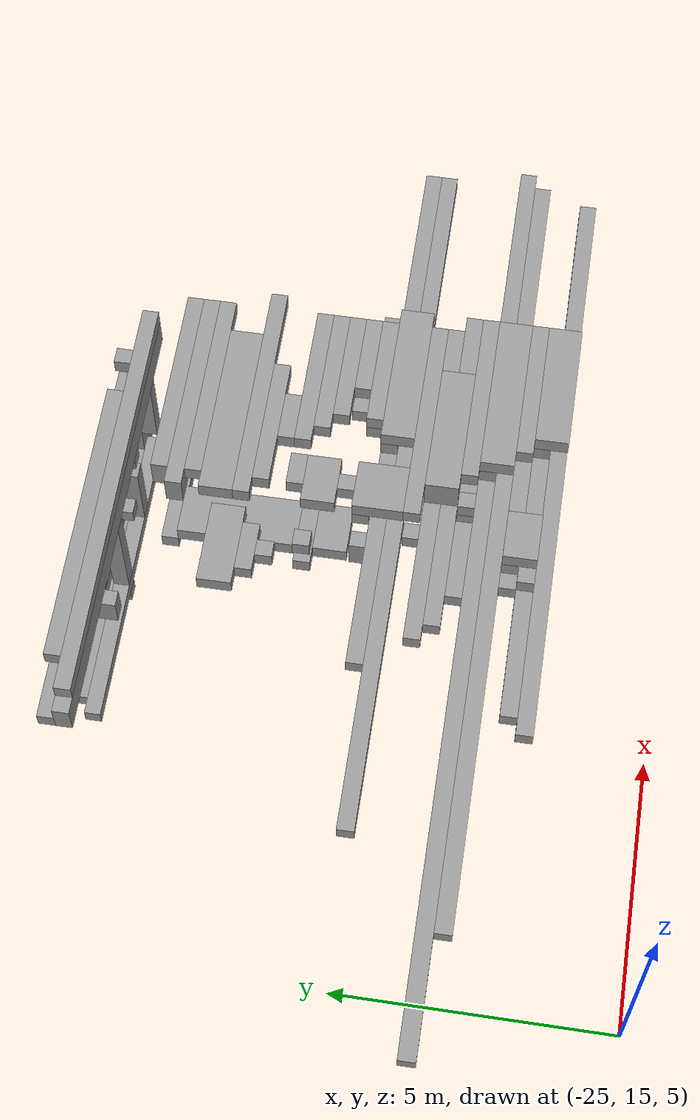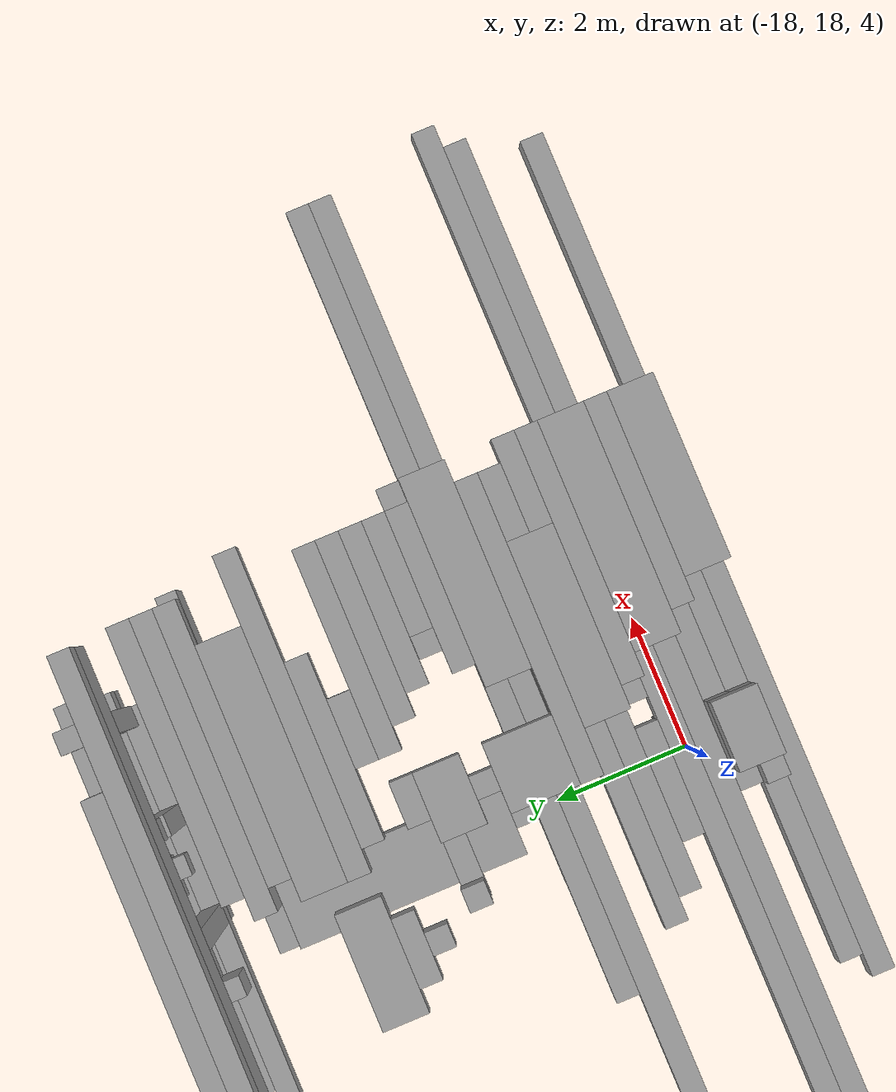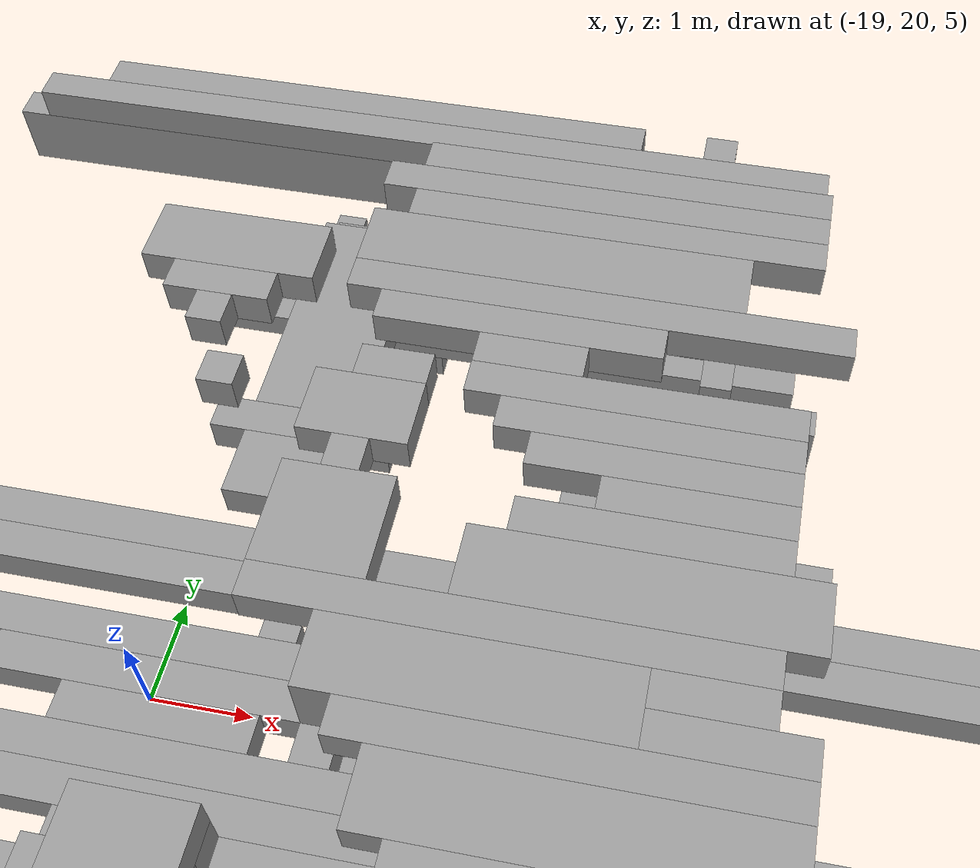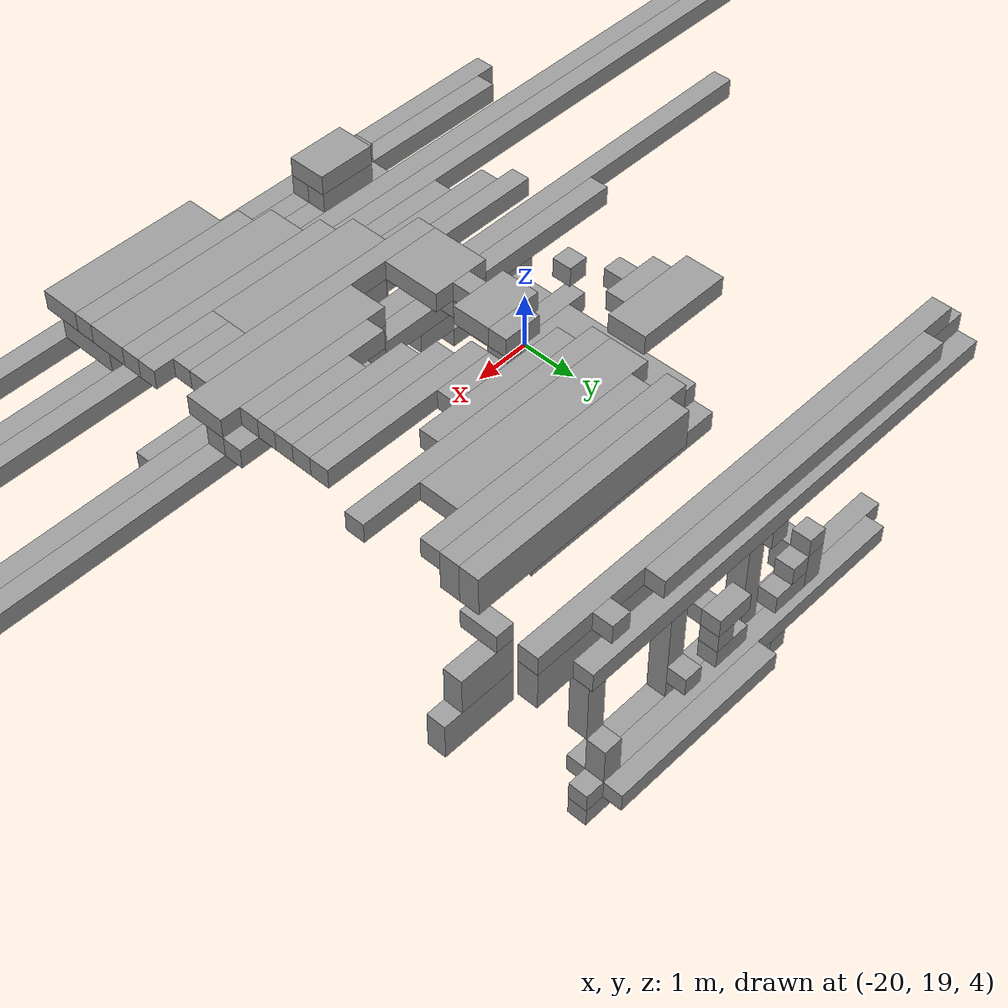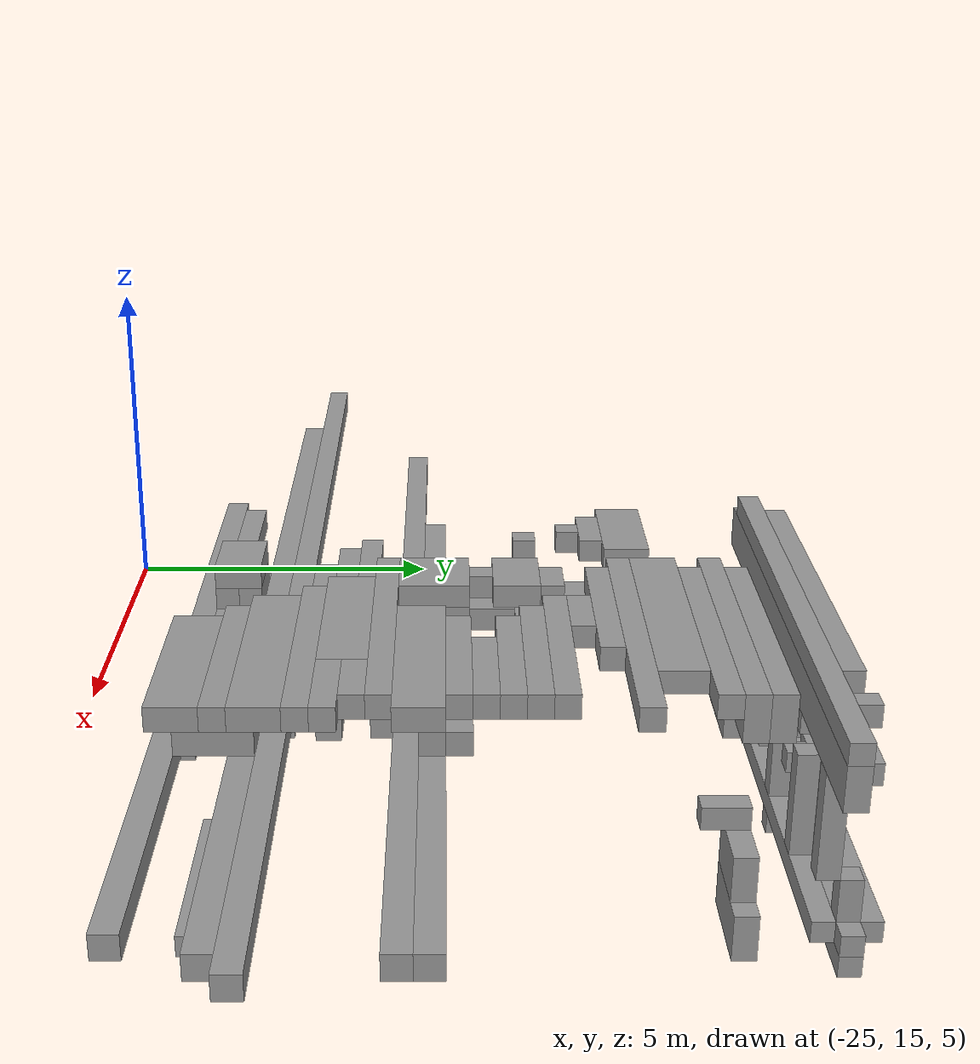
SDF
<sdf version="1.6">
 <world name="bt_world">
  <include><uri>model://sun</uri></include>
  <model name="obstacle_198">
   <static>true</static>
   <pose>-18.0 18.45 7.6499999999999995 0 0 0</pose>
   <link name="link">
    <collision name="collision"><geometry><box><size>17.4 0.3 0.3</size></box></geometry></collision>
    <visual name="visual">
     <geometry><box><size>17.4 0.3 0.3</size></box></geometry>
     <material><ambient>0.5 0.5 0.5 1</ambient><diffuse>0.6 0.6 0.6 1</diffuse></material>
    </visual>
   </link>
  </model>
  <model name="obstacle_363">
   <static>true</static>
   <pose>-17.099999999999998 18.15 7.6499999999999995 0 0 0</pose>
   <link name="link">
    <collision name="collision"><geometry><box><size>15.0 0.3 0.3</size></box></geometry></collision>
    <visual name="visual">
     <geometry><box><size>15.0 0.3 0.3</size></box></geometry>
     <material><ambient>0.5 0.5 0.5 1</ambient><diffuse>0.6 0.6 0.6 1</diffuse></material>
    </visual>
   </link>
  </model>
  <model name="obstacle_526">
   <static>true</static>
   <pose>-16.349999999999998 19.95 7.6499999999999995 0 0 0</pose>
   <link name="link">
    <collision name="collision"><geometry><box><size>13.5 0.3 0.3</size></box></geometry></collision>
    <visual name="visual">
     <geometry><box><size>13.5 0.3 0.3</size></box></geometry>
     <material><ambient>0.5 0.5 0.5 1</ambient><diffuse>0.6 0.6 0.6 1</diffuse></material>
    </visual>
   </link>
  </model>
  <model name="obstacle_748">
   <static>true</static>
   <pose>-17.55 25.05 7.199999999999999 0 0 0</pose>
   <link name="link">
    <collision name="collision"><geometry><box><size>8.1 0.3 0.6</size></box></geometry></collision>
    <visual name="visual">
     <geometry><box><size>8.1 0.3 0.6</size></box></geometry>
     <material><ambient>0.5 0.5 0.5 1</ambient><diffuse>0.6 0.6 0.6 1</diffuse></material>
    </visual>
   </link>
  </model>
  <model name="obstacle_749">
   <static>true</static>
   <pose>-17.849999999999998 25.349999999999998 7.05 0 0 0</pose>
   <link name="link">
    <collision name="collision"><geometry><box><size>7.5 0.3 0.3</size></box></geometry></collision>
    <visual name="visual">
     <geometry><box><size>7.5 0.3 0.3</size></box></geometry>
     <material><ambient>0.5 0.5 0.5 1</ambient><diffuse>0.6 0.6 0.6 1</diffuse></material>
    </visual>
   </link>
  </model>
  <model name="obstacle_811">
   <static>true</static>
   <pose>-17.4 25.05 7.6499999999999995 0 0 0</pose>
   <link name="link">
    <collision name="collision"><geometry><box><size>7.8 0.3 0.3</size></box></geometry></collision>
    <visual name="visual">
     <geometry><box><size>7.8 0.3 0.3</size></box></geometry>
     <material><ambient>0.5 0.5 0.5 1</ambient><diffuse>0.6 0.6 0.6 1</diffuse></material>
    </visual>
   </link>
  </model>
  <model name="obstacle_844">
   <static>true</static>
   <pose>-15.45 17.25 7.6499999999999995 0 0 0</pose>
   <link name="link">
    <collision name="collision"><geometry><box><size>11.1 0.3 0.3</size></box></geometry></collision>
    <visual name="visual">
     <geometry><box><size>11.1 0.3 0.3</size></box></geometry>
     <material><ambient>0.5 0.5 0.5 1</ambient><diffuse>0.6 0.6 0.6 1</diffuse></material>
    </visual>
   </link>
  </model>
  <model name="obstacle_897">
   <static>true</static>
   <pose>-17.7 17.55 7.6499999999999995 0 0 0</pose>
   <link name="link">
    <collision name="collision"><geometry><box><size>6.0 0.3 0.3</size></box></geometry></collision>
    <visual name="visual">
     <geometry><box><size>6.0 0.3 0.3</size></box></geometry>
     <material><ambient>0.5 0.5 0.5 1</ambient><diffuse>0.6 0.6 0.6 1</diffuse></material>
    </visual>
   </link>
  </model>
  <model name="obstacle_914">
   <static>true</static>
   <pose>-18.0 25.349999999999998 7.6499999999999995 0 0 0</pose>
   <link name="link">
    <collision name="collision">
     <geometry><box><size>5.3999999999999995 0.3 0.3</size></box></geometry>
    </collision>
    <visual name="visual">
     <geometry><box><size>5.3999999999999995 0.3 0.3</size></box></geometry>
     <material><ambient>0.5 0.5 0.5 1</ambient><diffuse>0.6 0.6 0.6 1</diffuse></material>
    </visual>
   </link>
  </model>
  <model name="obstacle_942">
   <static>true</static>
   <pose>-17.4 25.05 4.6499999999999995 0 0 0</pose>
   <link name="link">
    <collision name="collision"><geometry><box><size>6.0 0.3 0.3</size></box></geometry></collision>
    <visual name="visual">
     <geometry><box><size>6.0 0.3 0.3</size></box></geometry>
     <material><ambient>0.5 0.5 0.5 1</ambient><diffuse>0.6 0.6 0.6 1</diffuse></material>
    </visual>
   </link>
  </model>
  <model name="obstacle_971">
   <static>true</static>
   <pose>-14.85 20.25 7.6499999999999995 0 0 0</pose>
   <link name="link">
    <collision name="collision"><geometry><box><size>10.5 0.3 0.3</size></box></geometry></collision>
    <visual name="visual">
     <geometry><box><size>10.5 0.3 0.3</size></box></geometry>
     <material><ambient>0.5 0.5 0.5 1</ambient><diffuse>0.6 0.6 0.6 1</diffuse></material>
    </visual>
   </link>
  </model>
  <model name="obstacle_977">
   <static>true</static>
   <pose>-17.099999999999998 25.349999999999998 4.6499999999999995 0 0 0</pose>
   <link name="link">
    <collision name="collision"><geometry><box><size>6.0 0.3 0.3</size></box></geometry></collision>
    <visual name="visual">
     <geometry><box><size>6.0 0.3 0.3</size></box></geometry>
     <material><ambient>0.5 0.5 0.5 1</ambient><diffuse>0.6 0.6 0.6 1</diffuse></material>
    </visual>
   </link>
  </model>
  <model name="obstacle_1006">
   <static>true</static>
   <pose>-18.0 19.349999999999998 7.6499999999999995 0 0 0</pose>
   <link name="link">
    <collision name="collision"><geometry><box><size>3.0 0.3 0.3</size></box></geometry></collision>
    <visual name="visual">
     <geometry><box><size>3.0 0.3 0.3</size></box></geometry>
     <material><ambient>0.5 0.5 0.5 1</ambient><diffuse>0.6 0.6 0.6 1</diffuse></material>
    </visual>
   </link>
  </model>
  <model name="obstacle_1023">
   <static>true</static>
   <pose>-18.0 19.05 7.6499999999999995 0 0 0</pose>
   <link name="link">
    <collision name="collision"><geometry><box><size>2.4 0.3 0.3</size></box></geometry></collision>
    <visual name="visual">
     <geometry><box><size>2.4 0.3 0.3</size></box></geometry>
     <material><ambient>0.5 0.5 0.5 1</ambient><diffuse>0.6 0.6 0.6 1</diffuse></material>
    </visual>
   </link>
  </model>
  <model name="obstacle_1024">
   <static>true</static>
   <pose>-18.45 22.8 8.25 0 0 0</pose>
   <link name="link">
    <collision name="collision"><geometry><box><size>1.5 0.6 0.3</size></box></geometry></collision>
    <visual name="visual">
     <geometry><box><size>1.5 0.6 0.3</size></box></geometry>
     <material><ambient>0.5 0.5 0.5 1</ambient><diffuse>0.6 0.6 0.6 1</diffuse></material>
    </visual>
   </link>
  </model>
  <model name="obstacle_1032">
   <static>true</static>
   <pose>-18.45 22.349999999999998 8.25 0 0 0</pose>
   <link name="link">
    <collision name="collision">
     <geometry><box><size>0.8999999999999999 0.3 0.3</size></box></geometry>
    </collision>
    <visual name="visual">
     <geometry><box><size>0.8999999999999999 0.3 0.3</size></box></geometry>
     <material><ambient>0.5 0.5 0.5 1</ambient><diffuse>0.6 0.6 0.6 1</diffuse></material>
    </visual>
   </link>
  </model>
  <model name="obstacle_1050">
   <static>true</static>
   <pose>-17.849999999999998 18.75 7.6499999999999995 0 0 0</pose>
   <link name="link">
    <collision name="collision"><geometry><box><size>1.5 0.3 0.3</size></box></geometry></collision>
    <visual name="visual">
     <geometry><box><size>1.5 0.3 0.3</size></box></geometry>
     <material><ambient>0.5 0.5 0.5 1</ambient><diffuse>0.6 0.6 0.6 1</diffuse></material>
    </visual>
   </link>
  </model>
  <model name="obstacle_1052">
   <static>true</static>
   <pose>-18.15 20.25 7.35 0 0 0</pose>
   <link name="link">
    <collision name="collision">
     <geometry><box><size>0.8999999999999999 0.3 0.3</size></box></geometry>
    </collision>
    <visual name="visual">
     <geometry><box><size>0.8999999999999999 0.3 0.3</size></box></geometry>
     <material><ambient>0.5 0.5 0.5 1</ambient><diffuse>0.6 0.6 0.6 1</diffuse></material>
    </visual>
   </link>
  </model>
  <model name="obstacle_1053">
   <static>true</static>
   <pose>-18.45 22.05 8.25 0 0 0</pose>
   <link name="link">
    <collision name="collision"><geometry><box><size>0.3 0.3 0.3</size></box></geometry></collision>
    <visual name="visual">
     <geometry><box><size>0.3 0.3 0.3</size></box></geometry>
     <material><ambient>0.5 0.5 0.5 1</ambient><diffuse>0.6 0.6 0.6 1</diffuse></material>
    </visual>
   </link>
  </model>
  <model name="obstacle_1054">
   <static>true</static>
   <pose>-18.45 25.2 5.3999999999999995 0 0 0</pose>
   <link name="link">
    <collision name="collision"><geometry><box><size>0.3 0.6 0.6</size></box></geometry></collision>
    <visual name="visual">
     <geometry><box><size>0.3 0.6 0.6</size></box></geometry>
     <material><ambient>0.5 0.5 0.5 1</ambient><diffuse>0.6 0.6 0.6 1</diffuse></material>
    </visual>
   </link>
  </model>
  <model name="obstacle_1055">
   <static>true</static>
   <pose>-18.45 25.349999999999998 5.85 0 0 0</pose>
   <link name="link">
    <collision name="collision"><geometry><box><size>0.3 0.3 0.3</size></box></geometry></collision>
    <visual name="visual">
     <geometry><box><size>0.3 0.3 0.3</size></box></geometry>
     <material><ambient>0.5 0.5 0.5 1</ambient><diffuse>0.6 0.6 0.6 1</diffuse></material>
    </visual>
   </link>
  </model>
  <model name="obstacle_1067">
   <static>true</static>
   <pose>-17.7 17.55 7.949999999999999 0 0 0</pose>
   <link name="link">
    <collision name="collision"><geometry><box><size>1.2 0.3 0.3</size></box></geometry></collision>
    <visual name="visual">
     <geometry><box><size>1.2 0.3 0.3</size></box></geometry>
     <material><ambient>0.5 0.5 0.5 1</ambient><diffuse>0.6 0.6 0.6 1</diffuse></material>
    </visual>
   </link>
  </model>
  <model name="obstacle_1068">
   <static>true</static>
   <pose>-16.2 17.849999999999998 7.6499999999999995 0 0 0</pose>
   <link name="link">
    <collision name="collision"><geometry><box><size>4.2 0.3 0.3</size></box></geometry></collision>
    <visual name="visual">
     <geometry><box><size>4.2 0.3 0.3</size></box></geometry>
     <material><ambient>0.5 0.5 0.5 1</ambient><diffuse>0.6 0.6 0.6 1</diffuse></material>
    </visual>
   </link>
  </model>
  <model name="obstacle_1069">
   <static>true</static>
   <pose>-17.55 21.45 7.6499999999999995 0 0 0</pose>
   <link name="link">
    <collision name="collision"><geometry><box><size>1.5 0.3 0.3</size></box></geometry></collision>
    <visual name="visual">
     <geometry><box><size>1.5 0.3 0.3</size></box></geometry>
     <material><ambient>0.5 0.5 0.5 1</ambient><diffuse>0.6 0.6 0.6 1</diffuse></material>
    </visual>
   </link>
  </model>
  <model name="obstacle_1070">
   <static>true</static>
   <pose>-18.15 21.45 8.25 0 0 0</pose>
   <link name="link">
    <collision name="collision"><geometry><box><size>0.3 0.3 0.3</size></box></geometry></collision>
    <visual name="visual">
     <geometry><box><size>0.3 0.3 0.3</size></box></geometry>
     <material><ambient>0.5 0.5 0.5 1</ambient><diffuse>0.6 0.6 0.6 1</diffuse></material>
    </visual>
   </link>
  </model>
  <model name="obstacle_1071">
   <static>true</static>
   <pose>-18.0 25.349999999999998 5.25 0 0 0</pose>
   <link name="link">
    <collision name="collision"><geometry><box><size>0.6 0.3 0.3</size></box></geometry></collision>
    <visual name="visual">
     <geometry><box><size>0.6 0.3 0.3</size></box></geometry>
     <material><ambient>0.5 0.5 0.5 1</ambient><diffuse>0.6 0.6 0.6 1</diffuse></material>
    </visual>
   </link>
  </model>
  <model name="obstacle_1072">
   <static>true</static>
   <pose>-18.15 25.349999999999998 5.55 0 0 0</pose>
   <link name="link">
    <collision name="collision"><geometry><box><size>0.3 0.3 0.3</size></box></geometry></collision>
    <visual name="visual">
     <geometry><box><size>0.3 0.3 0.3</size></box></geometry>
     <material><ambient>0.5 0.5 0.5 1</ambient><diffuse>0.6 0.6 0.6 1</diffuse></material>
    </visual>
   </link>
  </model>
  <model name="obstacle_1087">
   <static>true</static>
   <pose>-17.55 17.7 8.25 0 0 0</pose>
   <link name="link">
    <collision name="collision">
     <geometry><box><size>0.8999999999999999 0.6 0.3</size></box></geometry>
    </collision>
    <visual name="visual">
     <geometry><box><size>0.8999999999999999 0.6 0.3</size></box></geometry>
     <material><ambient>0.5 0.5 0.5 1</ambient><diffuse>0.6 0.6 0.6 1</diffuse></material>
    </visual>
   </link>
  </model>
  <model name="obstacle_1088">
   <static>true</static>
   <pose>-17.55 17.849999999999998 7.949999999999999 0 0 0</pose>
   <link name="link">
    <collision name="collision">
     <geometry><box><size>0.8999999999999999 0.3 0.3</size></box></geometry>
    </collision>
    <visual name="visual">
     <geometry><box><size>0.8999999999999999 0.3 0.3</size></box></geometry>
     <material><ambient>0.5 0.5 0.5 1</ambient><diffuse>0.6 0.6 0.6 1</diffuse></material>
    </visual>
   </link>
  </model>
  <model name="obstacle_1089">
   <static>true</static>
   <pose>-17.55 21.0 7.6499999999999995 0 0 0</pose>
   <link name="link">
    <collision name="collision">
     <geometry><box><size>0.8999999999999999 0.6 0.3</size></box></geometry>
    </collision>
    <visual name="visual">
     <geometry><box><size>0.8999999999999999 0.6 0.3</size></box></geometry>
     <material><ambient>0.5 0.5 0.5 1</ambient><diffuse>0.6 0.6 0.6 1</diffuse></material>
    </visual>
   </link>
  </model>
  <model name="obstacle_1090">
   <static>true</static>
   <pose>-17.55 22.65 7.6499999999999995 0 0 0</pose>
   <link name="link">
    <collision name="collision">
     <geometry><box><size>0.8999999999999999 2.1 0.3</size></box></geometry>
    </collision>
    <visual name="visual">
     <geometry><box><size>0.8999999999999999 2.1 0.3</size></box></geometry>
     <material><ambient>0.5 0.5 0.5 1</ambient><diffuse>0.6 0.6 0.6 1</diffuse></material>
    </visual>
   </link>
  </model>
  <model name="obstacle_1091">
   <static>true</static>
   <pose>-16.349999999999998 23.849999999999998 7.35 0 0 0</pose>
   <link name="link">
    <collision name="collision"><geometry><box><size>3.3 0.3 0.3</size></box></geometry></collision>
    <visual name="visual">
     <geometry><box><size>3.3 0.3 0.3</size></box></geometry>
     <material><ambient>0.5 0.5 0.5 1</ambient><diffuse>0.6 0.6 0.6 1</diffuse></material>
    </visual>
   </link>
  </model>
  <model name="obstacle_1092">
   <static>true</static>
   <pose>-17.849999999999998 25.349999999999998 4.35 0 0 0</pose>
   <link name="link">
    <collision name="collision"><geometry><box><size>0.3 0.3 0.3</size></box></geometry></collision>
    <visual name="visual">
     <geometry><box><size>0.3 0.3 0.3</size></box></geometry>
     <material><ambient>0.5 0.5 0.5 1</ambient><diffuse>0.6 0.6 0.6 1</diffuse></material>
    </visual>
   </link>
  </model>
  <model name="obstacle_1102">
   <static>true</static>
   <pose>-17.55 20.55 7.199999999999999 0 0 0</pose>
   <link name="link">
    <collision name="collision"><geometry><box><size>0.3 0.3 0.6</size></box></geometry></collision>
    <visual name="visual">
     <geometry><box><size>0.3 0.3 0.6</size></box></geometry>
     <material><ambient>0.5 0.5 0.5 1</ambient><diffuse>0.6 0.6 0.6 1</diffuse></material>
    </visual>
   </link>
  </model>
  <model name="obstacle_1103">
   <static>true</static>
   <pose>-17.55 25.05 4.35 0 0 0</pose>
   <link name="link">
    <collision name="collision"><geometry><box><size>0.3 0.3 0.3</size></box></geometry></collision>
    <visual name="visual">
     <geometry><box><size>0.3 0.3 0.3</size></box></geometry>
     <material><ambient>0.5 0.5 0.5 1</ambient><diffuse>0.6 0.6 0.6 1</diffuse></material>
    </visual>
   </link>
  </model>
  <model name="obstacle_1104">
   <static>true</static>
   <pose>-17.55 25.05 5.85 0 0 0</pose>
   <link name="link">
    <collision name="collision"><geometry><box><size>0.3 0.3 2.1</size></box></geometry></collision>
    <visual name="visual">
     <geometry><box><size>0.3 0.3 2.1</size></box></geometry>
     <material><ambient>0.5 0.5 0.5 1</ambient><diffuse>0.6 0.6 0.6 1</diffuse></material>
    </visual>
   </link>
  </model>
  <model name="obstacle_1105">
   <static>true</static>
   <pose>-17.55 25.349999999999998 6.75 0 0 0</pose>
   <link name="link">
    <collision name="collision"><geometry><box><size>0.3 0.3 0.3</size></box></geometry></collision>
    <visual name="visual">
     <geometry><box><size>0.3 0.3 0.3</size></box></geometry>
     <material><ambient>0.5 0.5 0.5 1</ambient><diffuse>0.6 0.6 0.6 1</diffuse></material>
    </visual>
   </link>
  </model>
  <model name="obstacle_1135">
   <static>true</static>
   <pose>-17.25 18.45 7.35 0 0 0</pose>
   <link name="link">
    <collision name="collision"><geometry><box><size>0.3 0.3 0.3</size></box></geometry></collision>
    <visual name="visual">
     <geometry><box><size>0.3 0.3 0.3</size></box></geometry>
     <material><ambient>0.5 0.5 0.5 1</ambient><diffuse>0.6 0.6 0.6 1</diffuse></material>
    </visual>
   </link>
  </model>
  <model name="obstacle_1136">
   <static>true</static>
   <pose>-17.25 19.65 7.35 0 0 0</pose>
   <link name="link">
    <collision name="collision"><geometry><box><size>0.3 0.3 0.3</size></box></geometry></collision>
    <visual name="visual">
     <geometry><box><size>0.3 0.3 0.3</size></box></geometry>
     <material><ambient>0.5 0.5 0.5 1</ambient><diffuse>0.6 0.6 0.6 1</diffuse></material>
    </visual>
   </link>
  </model>
  <model name="obstacle_1137">
   <static>true</static>
   <pose>-15.45 19.65 8.25 0 0 0</pose>
   <link name="link">
    <collision name="collision"><geometry><box><size>3.9 0.3 0.3</size></box></geometry></collision>
    <visual name="visual">
     <geometry><box><size>3.9 0.3 0.3</size></box></geometry>
     <material><ambient>0.5 0.5 0.5 1</ambient><diffuse>0.6 0.6 0.6 1</diffuse></material>
    </visual>
   </link>
  </model>
  <model name="obstacle_1138">
   <static>true</static>
   <pose>-16.95 20.25 8.25 0 0 0</pose>
   <link name="link">
    <collision name="collision">
     <geometry><box><size>0.8999999999999999 0.8999999999999999 0.3</size></box></geometry>
    </collision>
    <visual name="visual">
     <geometry><box><size>0.8999999999999999 0.8999999999999999 0.3</size></box></geometry>
     <material><ambient>0.5 0.5 0.5 1</ambient><diffuse>0.6 0.6 0.6 1</diffuse></material>
    </visual>
   </link>
  </model>
  <model name="obstacle_1139">
   <static>true</static>
   <pose>-17.25 20.25 7.05 0 0 0</pose>
   <link name="link">
    <collision name="collision"><geometry><box><size>0.3 0.3 0.3</size></box></geometry></collision>
    <visual name="visual">
     <geometry><box><size>0.3 0.3 0.3</size></box></geometry>
     <material><ambient>0.5 0.5 0.5 1</ambient><diffuse>0.6 0.6 0.6 1</diffuse></material>
    </visual>
   </link>
  </model>
  <model name="obstacle_1140">
   <static>true</static>
   <pose>-17.099999999999998 20.55 7.949999999999999 0 0 0</pose>
   <link name="link">
    <collision name="collision"><geometry><box><size>0.6 0.3 0.3</size></box></geometry></collision>
    <visual name="visual">
     <geometry><box><size>0.6 0.3 0.3</size></box></geometry>
     <material><ambient>0.5 0.5 0.5 1</ambient><diffuse>0.6 0.6 0.6 1</diffuse></material>
    </visual>
   </link>
  </model>
  <model name="obstacle_1141">
   <static>true</static>
   <pose>-16.95 21.3 8.25 0 0 0</pose>
   <link name="link">
    <collision name="collision">
     <geometry><box><size>0.8999999999999999 0.6 0.3</size></box></geometry>
    </collision>
    <visual name="visual">
     <geometry><box><size>0.8999999999999999 0.6 0.3</size></box></geometry>
     <material><ambient>0.5 0.5 0.5 1</ambient><diffuse>0.6 0.6 0.6 1</diffuse></material>
    </visual>
   </link>
  </model>
  <model name="obstacle_1142">
   <static>true</static>
   <pose>-15.299999999999999 22.65 8.25 0 0 0</pose>
   <link name="link">
    <collision name="collision"><geometry><box><size>4.2 0.3 0.3</size></box></geometry></collision>
    <visual name="visual">
     <geometry><box><size>4.2 0.3 0.3</size></box></geometry>
     <material><ambient>0.5 0.5 0.5 1</ambient><diffuse>0.6 0.6 0.6 1</diffuse></material>
    </visual>
   </link>
  </model>
  <model name="obstacle_1143">
   <static>true</static>
   <pose>-15.75 23.099999999999998 8.25 0 0 0</pose>
   <link name="link">
    <collision name="collision"><geometry><box><size>3.3 0.6 0.3</size></box></geometry></collision>
    <visual name="visual">
     <geometry><box><size>3.3 0.6 0.3</size></box></geometry>
     <material><ambient>0.5 0.5 0.5 1</ambient><diffuse>0.6 0.6 0.6 1</diffuse></material>
    </visual>
   </link>
  </model>
  <model name="obstacle_1144">
   <static>true</static>
   <pose>-15.45 23.849999999999998 8.1 0 0 0</pose>
   <link name="link">
    <collision name="collision"><geometry><box><size>3.9 0.3 0.6</size></box></geometry></collision>
    <visual name="visual">
     <geometry><box><size>3.9 0.3 0.6</size></box></geometry>
     <material><ambient>0.5 0.5 0.5 1</ambient><diffuse>0.6 0.6 0.6 1</diffuse></material>
    </visual>
   </link>
  </model>
  <model name="obstacle_1145">
   <static>true</static>
   <pose>-15.899999999999999 25.65 4.6499999999999995 0 0 0</pose>
   <link name="link">
    <collision name="collision"><geometry><box><size>3.0 0.3 0.3</size></box></geometry></collision>
    <visual name="visual">
     <geometry><box><size>3.0 0.3 0.3</size></box></geometry>
     <material><ambient>0.5 0.5 0.5 1</ambient><diffuse>0.6 0.6 0.6 1</diffuse></material>
    </visual>
   </link>
  </model>
  <model name="obstacle_1178">
   <static>true</static>
   <pose>-16.8 20.25 7.35 0 0 0</pose>
   <link name="link">
    <collision name="collision"><geometry><box><size>0.6 0.3 0.3</size></box></geometry></collision>
    <visual name="visual">
     <geometry><box><size>0.6 0.3 0.3</size></box></geometry>
     <material><ambient>0.5 0.5 0.5 1</ambient><diffuse>0.6 0.6 0.6 1</diffuse></material>
    </visual>
   </link>
  </model>
  <model name="obstacle_1179">
   <static>true</static>
   <pose>-16.95 20.849999999999998 8.25 0 0 0</pose>
   <link name="link">
    <collision name="collision"><geometry><box><size>0.3 0.3 0.3</size></box></geometry></collision>
    <visual name="visual">
     <geometry><box><size>0.3 0.3 0.3</size></box></geometry>
     <material><ambient>0.5 0.5 0.5 1</ambient><diffuse>0.6 0.6 0.6 1</diffuse></material>
    </visual>
   </link>
  </model>
  <model name="obstacle_1180">
   <static>true</static>
   <pose>-16.8 21.75 8.25 0 0 0</pose>
   <link name="link">
    <collision name="collision"><geometry><box><size>0.6 0.3 0.3</size></box></geometry></collision>
    <visual name="visual">
     <geometry><box><size>0.6 0.3 0.3</size></box></geometry>
     <material><ambient>0.5 0.5 0.5 1</ambient><diffuse>0.6 0.6 0.6 1</diffuse></material>
    </visual>
   </link>
  </model>
  <model name="obstacle_1181">
   <static>true</static>
   <pose>-15.899999999999999 22.349999999999998 8.25 0 0 0</pose>
   <link name="link">
    <collision name="collision"><geometry><box><size>2.4 0.3 0.3</size></box></geometry></collision>
    <visual name="visual">
     <geometry><box><size>2.4 0.3 0.3</size></box></geometry>
     <material><ambient>0.5 0.5 0.5 1</ambient><diffuse>0.6 0.6 0.6 1</diffuse></material>
    </visual>
   </link>
  </model>
  <model name="obstacle_1182">
   <static>true</static>
   <pose>-15.299999999999999 23.55 8.25 0 0 0</pose>
   <link name="link">
    <collision name="collision">
     <geometry><box><size>3.5999999999999996 0.3 0.3</size></box></geometry>
    </collision>
    <visual name="visual">
     <geometry><box><size>3.5999999999999996 0.3 0.3</size></box></geometry>
     <material><ambient>0.5 0.5 0.5 1</ambient><diffuse>0.6 0.6 0.6 1</diffuse></material>
    </visual>
   </link>
  </model>
  <model name="obstacle_1183">
   <static>true</static>
   <pose>-15.299999999999999 24.15 8.1 0 0 0</pose>
   <link name="link">
    <collision name="collision">
     <geometry><box><size>3.5999999999999996 0.3 0.6</size></box></geometry>
    </collision>
    <visual name="visual">
     <geometry><box><size>3.5999999999999996 0.3 0.6</size></box></geometry>
     <material><ambient>0.5 0.5 0.5 1</ambient><diffuse>0.6 0.6 0.6 1</diffuse></material>
    </visual>
   </link>
  </model>
  <model name="obstacle_1184">
   <static>true</static>
   <pose>-16.8 25.349999999999998 5.25 0 0 0</pose>
   <link name="link">
    <collision name="collision"><geometry><box><size>0.6 0.3 0.3</size></box></geometry></collision>
    <visual name="visual">
     <geometry><box><size>0.6 0.3 0.3</size></box></geometry>
     <material><ambient>0.5 0.5 0.5 1</ambient><diffuse>0.6 0.6 0.6 1</diffuse></material>
    </visual>
   </link>
  </model>
  <model name="obstacle_1185">
   <static>true</static>
   <pose>-16.8 25.349999999999998 5.85 0 0 0</pose>
   <link name="link">
    <collision name="collision"><geometry><box><size>0.6 0.3 0.3</size></box></geometry></collision>
    <visual name="visual">
     <geometry><box><size>0.6 0.3 0.3</size></box></geometry>
     <material><ambient>0.5 0.5 0.5 1</ambient><diffuse>0.6 0.6 0.6 1</diffuse></material>
    </visual>
   </link>
  </model>
  <model name="obstacle_1201">
   <static>true</static>
   <pose>-15.45 17.25 4.6499999999999995 0 0 0</pose>
   <link name="link">
    <collision name="collision">
     <geometry><box><size>2.6999999999999997 0.3 0.3</size></box></geometry>
    </collision>
    <visual name="visual">
     <geometry><box><size>2.6999999999999997 0.3 0.3</size></box></geometry>
     <material><ambient>0.5 0.5 0.5 1</ambient><diffuse>0.6 0.6 0.6 1</diffuse></material>
    </visual>
   </link>
  </model>
  <model name="obstacle_1202">
   <static>true</static>
   <pose>-16.65 18.9 7.35 0 0 0</pose>
   <link name="link">
    <collision name="collision"><geometry><box><size>0.3 1.2 0.3</size></box></geometry></collision>
    <visual name="visual">
     <geometry><box><size>0.3 1.2 0.3</size></box></geometry>
     <material><ambient>0.5 0.5 0.5 1</ambient><diffuse>0.6 0.6 0.6 1</diffuse></material>
    </visual>
   </link>
  </model>
  <model name="obstacle_1203">
   <static>true</static>
   <pose>-16.65 18.75 7.6499999999999995 0 0 0</pose>
   <link name="link">
    <collision name="collision"><geometry><box><size>0.3 0.3 0.3</size></box></geometry></collision>
    <visual name="visual">
     <geometry><box><size>0.3 0.3 0.3</size></box></geometry>
     <material><ambient>0.5 0.5 0.5 1</ambient><diffuse>0.6 0.6 0.6 1</diffuse></material>
    </visual>
   </link>
  </model>
  <model name="obstacle_1204">
   <static>true</static>
   <pose>-15.6 19.2 8.1 0 0 0</pose>
   <link name="link">
    <collision name="collision"><geometry><box><size>2.4 0.6 0.6</size></box></geometry></collision>
    <visual name="visual">
     <geometry><box><size>2.4 0.6 0.6</size></box></geometry>
     <material><ambient>0.5 0.5 0.5 1</ambient><diffuse>0.6 0.6 0.6 1</diffuse></material>
    </visual>
   </link>
  </model>
  <model name="obstacle_1205">
   <static>true</static>
   <pose>-16.65 25.05 5.85 0 0 0</pose>
   <link name="link">
    <collision name="collision"><geometry><box><size>0.3 0.3 0.3</size></box></geometry></collision>
    <visual name="visual">
     <geometry><box><size>0.3 0.3 0.3</size></box></geometry>
     <material><ambient>0.5 0.5 0.5 1</ambient><diffuse>0.6 0.6 0.6 1</diffuse></material>
    </visual>
   </link>
  </model>
  <model name="obstacle_1206">
   <static>true</static>
   <pose>-16.65 25.349999999999998 5.55 0 0 0</pose>
   <link name="link">
    <collision name="collision"><geometry><box><size>0.3 0.3 0.3</size></box></geometry></collision>
    <visual name="visual">
     <geometry><box><size>0.3 0.3 0.3</size></box></geometry>
     <material><ambient>0.5 0.5 0.5 1</ambient><diffuse>0.6 0.6 0.6 1</diffuse></material>
    </visual>
   </link>
  </model>
  <model name="obstacle_1217">
   <static>true</static>
   <pose>-15.45 17.25 7.35 0 0 0</pose>
   <link name="link">
    <collision name="collision"><geometry><box><size>2.1 0.3 0.3</size></box></geometry></collision>
    <visual name="visual">
     <geometry><box><size>2.1 0.3 0.3</size></box></geometry>
     <material><ambient>0.5 0.5 0.5 1</ambient><diffuse>0.6 0.6 0.6 1</diffuse></material>
    </visual>
   </link>
  </model>
  <model name="obstacle_1218">
   <static>true</static>
   <pose>-16.2 19.05 7.35 0 0 0</pose>
   <link name="link">
    <collision name="collision">
     <geometry><box><size>0.6 0.8999999999999999 0.3</size></box></geometry>
    </collision>
    <visual name="visual">
     <geometry><box><size>0.6 0.8999999999999999 0.3</size></box></geometry>
     <material><ambient>0.5 0.5 0.5 1</ambient><diffuse>0.6 0.6 0.6 1</diffuse></material>
    </visual>
   </link>
  </model>
  <model name="obstacle_1219">
   <static>true</static>
   <pose>-14.85 18.75 8.25 0 0 0</pose>
   <link name="link">
    <collision name="collision"><geometry><box><size>3.3 0.3 0.3</size></box></geometry></collision>
    <visual name="visual">
     <geometry><box><size>3.3 0.3 0.3</size></box></geometry>
     <material><ambient>0.5 0.5 0.5 1</ambient><diffuse>0.6 0.6 0.6 1</diffuse></material>
    </visual>
   </link>
  </model>
  <model name="obstacle_1220">
   <static>true</static>
   <pose>-15.6 19.65 7.949999999999999 0 0 0</pose>
   <link name="link">
    <collision name="collision">
     <geometry><box><size>1.7999999999999998 0.3 0.3</size></box></geometry>
    </collision>
    <visual name="visual">
     <geometry><box><size>1.7999999999999998 0.3 0.3</size></box></geometry>
     <material><ambient>0.5 0.5 0.5 1</ambient><diffuse>0.6 0.6 0.6 1</diffuse></material>
    </visual>
   </link>
  </model>
  <model name="obstacle_1228">
   <static>true</static>
   <pose>-14.7 18.3 8.25 0 0 0</pose>
   <link name="link">
    <collision name="collision"><geometry><box><size>3.0 0.6 0.3</size></box></geometry></collision>
    <visual name="visual">
     <geometry><box><size>3.0 0.6 0.3</size></box></geometry>
     <material><ambient>0.5 0.5 0.5 1</ambient><diffuse>0.6 0.6 0.6 1</diffuse></material>
    </visual>
   </link>
  </model>
  <model name="obstacle_1229">
   <static>true</static>
   <pose>-16.05 18.45 7.35 0 0 0</pose>
   <link name="link">
    <collision name="collision"><geometry><box><size>0.3 0.3 0.3</size></box></geometry></collision>
    <visual name="visual">
     <geometry><box><size>0.3 0.3 0.3</size></box></geometry>
     <material><ambient>0.5 0.5 0.5 1</ambient><diffuse>0.6 0.6 0.6 1</diffuse></material>
    </visual>
   </link>
  </model>
  <model name="obstacle_1230">
   <static>true</static>
   <pose>-15.45 18.599999999999998 7.949999999999999 0 0 0</pose>
   <link name="link">
    <collision name="collision"><geometry><box><size>1.5 0.6 0.3</size></box></geometry></collision>
    <visual name="visual">
     <geometry><box><size>1.5 0.6 0.3</size></box></geometry>
     <material><ambient>0.5 0.5 0.5 1</ambient><diffuse>0.6 0.6 0.6 1</diffuse></material>
    </visual>
   </link>
  </model>
  <model name="obstacle_1232">
   <static>true</static>
   <pose>-14.85 21.75 8.25 0 0 0</pose>
   <link name="link">
    <collision name="collision">
     <geometry><box><size>2.6999999999999997 0.3 0.3</size></box></geometry>
    </collision>
    <visual name="visual">
     <geometry><box><size>2.6999999999999997 0.3 0.3</size></box></geometry>
     <material><ambient>0.5 0.5 0.5 1</ambient><diffuse>0.6 0.6 0.6 1</diffuse></material>
    </visual>
   </link>
  </model>
  <model name="obstacle_1233">
   <static>true</static>
   <pose>-15.75 22.05 8.25 0 0 0</pose>
   <link name="link">
    <collision name="collision">
     <geometry><box><size>0.8999999999999999 0.3 0.3</size></box></geometry>
    </collision>
    <visual name="visual">
     <geometry><box><size>0.8999999999999999 0.3 0.3</size></box></geometry>
     <material><ambient>0.5 0.5 0.5 1</ambient><diffuse>0.6 0.6 0.6 1</diffuse></material>
    </visual>
   </link>
  </model>
  <model name="obstacle_1234">
   <static>true</static>
   <pose>-16.05 22.65 7.949999999999999 0 0 0</pose>
   <link name="link">
    <collision name="collision"><geometry><box><size>0.3 0.3 0.3</size></box></geometry></collision>
    <visual name="visual">
     <geometry><box><size>0.3 0.3 0.3</size></box></geometry>
     <material><ambient>0.5 0.5 0.5 1</ambient><diffuse>0.6 0.6 0.6 1</diffuse></material>
    </visual>
   </link>
  </model>
  <model name="obstacle_1235">
   <static>true</static>
   <pose>-16.05 25.05 5.55 0 0 0</pose>
   <link name="link">
    <collision name="collision"><geometry><box><size>0.3 0.3 1.5</size></box></geometry></collision>
    <visual name="visual">
     <geometry><box><size>0.3 0.3 1.5</size></box></geometry>
     <material><ambient>0.5 0.5 0.5 1</ambient><diffuse>0.6 0.6 0.6 1</diffuse></material>
    </visual>
   </link>
  </model>
  <model name="obstacle_1236">
   <static>true</static>
   <pose>-16.05 25.05 6.75 0 0 0</pose>
   <link name="link">
    <collision name="collision"><geometry><box><size>0.3 0.3 0.3</size></box></geometry></collision>
    <visual name="visual">
     <geometry><box><size>0.3 0.3 0.3</size></box></geometry>
     <material><ambient>0.5 0.5 0.5 1</ambient><diffuse>0.6 0.6 0.6 1</diffuse></material>
    </visual>
   </link>
  </model>
  <model name="obstacle_1237">
   <static>true</static>
   <pose>-15.149999999999999 25.349999999999998 4.35 0 0 0</pose>
   <link name="link">
    <collision name="collision"><geometry><box><size>2.1 0.3 0.3</size></box></geometry></collision>
    <visual name="visual">
     <geometry><box><size>2.1 0.3 0.3</size></box></geometry>
     <material><ambient>0.5 0.5 0.5 1</ambient><diffuse>0.6 0.6 0.6 1</diffuse></material>
    </visual>
   </link>
  </model>
  <model name="obstacle_1238">
   <static>true</static>
   <pose>-16.05 25.349999999999998 5.25 0 0 0</pose>
   <link name="link">
    <collision name="collision"><geometry><box><size>0.3 0.3 0.3</size></box></geometry></collision>
    <visual name="visual">
     <geometry><box><size>0.3 0.3 0.3</size></box></geometry>
     <material><ambient>0.5 0.5 0.5 1</ambient><diffuse>0.6 0.6 0.6 1</diffuse></material>
    </visual>
   </link>
  </model>
  <model name="obstacle_1246">
   <static>true</static>
   <pose>-14.549999999999999 17.849999999999998 8.25 0 0 0</pose>
   <link name="link">
    <collision name="collision">
     <geometry><box><size>2.6999999999999997 0.3 0.3</size></box></geometry>
    </collision>
    <visual name="visual">
     <geometry><box><size>2.6999999999999997 0.3 0.3</size></box></geometry>
     <material><ambient>0.5 0.5 0.5 1</ambient><diffuse>0.6 0.6 0.6 1</diffuse></material>
    </visual>
   </link>
  </model>
  <model name="obstacle_1247">
   <static>true</static>
   <pose>-15.0 19.05 7.6499999999999995 0 0 0</pose>
   <link name="link">
    <collision name="collision">
     <geometry><box><size>1.7999999999999998 0.3 0.3</size></box></geometry>
    </collision>
    <visual name="visual">
     <geometry><box><size>1.7999999999999998 0.3 0.3</size></box></geometry>
     <material><ambient>0.5 0.5 0.5 1</ambient><diffuse>0.6 0.6 0.6 1</diffuse></material>
    </visual>
   </link>
  </model>
  <model name="obstacle_1249">
   <static>true</static>
   <pose>-14.549999999999999 20.099999999999998 8.25 0 0 0</pose>
   <link name="link">
    <collision name="collision">
     <geometry><box><size>2.6999999999999997 0.6 0.3</size></box></geometry>
    </collision>
    <visual name="visual">
     <geometry><box><size>2.6999999999999997 0.6 0.3</size></box></geometry>
     <material><ambient>0.5 0.5 0.5 1</ambient><diffuse>0.6 0.6 0.6 1</diffuse></material>
    </visual>
   </link>
  </model>
  <model name="obstacle_1250">
   <static>true</static>
   <pose>-14.549999999999999 20.25 7.949999999999999 0 0 0</pose>
   <link name="link">
    <collision name="collision">
     <geometry><box><size>2.6999999999999997 0.3 0.3</size></box></geometry>
    </collision>
    <visual name="visual">
     <geometry><box><size>2.6999999999999997 0.3 0.3</size></box></geometry>
     <material><ambient>0.5 0.5 0.5 1</ambient><diffuse>0.6 0.6 0.6 1</diffuse></material>
    </visual>
   </link>
  </model>
  <model name="obstacle_1251">
   <static>true</static>
   <pose>-14.7 21.45 8.25 0 0 0</pose>
   <link name="link">
    <collision name="collision"><geometry><box><size>2.4 0.3 0.3</size></box></geometry></collision>
    <visual name="visual">
     <geometry><box><size>2.4 0.3 0.3</size></box></geometry>
     <material><ambient>0.5 0.5 0.5 1</ambient><diffuse>0.6 0.6 0.6 1</diffuse></material>
    </visual>
   </link>
  </model>
  <model name="obstacle_1257">
   <static>true</static>
   <pose>-14.399999999999999 17.4 8.25 0 0 0</pose>
   <link name="link">
    <collision name="collision"><geometry><box><size>2.4 0.6 0.3</size></box></geometry></collision>
    <visual name="visual">
     <geometry><box><size>2.4 0.6 0.3</size></box></geometry>
     <material><ambient>0.5 0.5 0.5 1</ambient><diffuse>0.6 0.6 0.6 1</diffuse></material>
    </visual>
   </link>
  </model>
  <model name="obstacle_1258">
   <static>true</static>
   <pose>-14.399999999999999 17.849999999999998 7.949999999999999 0 0 0</pose>
   <link name="link">
    <collision name="collision">
     <geometry><box><size>2.4 0.8999999999999999 0.3</size></box></geometry>
    </collision>
    <visual name="visual">
     <geometry><box><size>2.4 0.8999999999999999 0.3</size></box></geometry>
     <material><ambient>0.5 0.5 0.5 1</ambient><diffuse>0.6 0.6 0.6 1</diffuse></material>
    </visual>
   </link>
  </model>
  <model name="obstacle_1259">
   <static>true</static>
   <pose>-15.299999999999999 19.95 7.949999999999999 0 0 0</pose>
   <link name="link">
    <collision name="collision"><geometry><box><size>0.6 0.3 0.3</size></box></geometry></collision>
    <visual name="visual">
     <geometry><box><size>0.6 0.3 0.3</size></box></geometry>
     <material><ambient>0.5 0.5 0.5 1</ambient><diffuse>0.6 0.6 0.6 1</diffuse></material>
    </visual>
   </link>
  </model>
  <model name="obstacle_1260">
   <static>true</static>
   <pose>-15.0 20.25 7.35 0 0 0</pose>
   <link name="link">
    <collision name="collision"><geometry><box><size>1.2 0.3 0.3</size></box></geometry></collision>
    <visual name="visual">
     <geometry><box><size>1.2 0.3 0.3</size></box></geometry>
     <material><ambient>0.5 0.5 0.5 1</ambient><diffuse>0.6 0.6 0.6 1</diffuse></material>
    </visual>
   </link>
  </model>
  <model name="obstacle_1261">
   <static>true</static>
   <pose>-14.399999999999999 20.55 7.949999999999999 0 0 0</pose>
   <link name="link">
    <collision name="collision"><geometry><box><size>2.4 0.3 0.3</size></box></geometry></collision>
    <visual name="visual">
     <geometry><box><size>2.4 0.3 0.3</size></box></geometry>
     <material><ambient>0.5 0.5 0.5 1</ambient><diffuse>0.6 0.6 0.6 1</diffuse></material>
    </visual>
   </link>
  </model>
  <model name="obstacle_1262">
   <static>true</static>
   <pose>-14.549999999999999 20.55 8.25 0 0 0</pose>
   <link name="link">
    <collision name="collision"><geometry><box><size>2.1 0.3 0.3</size></box></geometry></collision>
    <visual name="visual">
     <geometry><box><size>2.1 0.3 0.3</size></box></geometry>
     <material><ambient>0.5 0.5 0.5 1</ambient><diffuse>0.6 0.6 0.6 1</diffuse></material>
    </visual>
   </link>
  </model>
  <model name="obstacle_1263">
   <static>true</static>
   <pose>-14.549999999999999 21.15 8.25 0 0 0</pose>
   <link name="link">
    <collision name="collision"><geometry><box><size>2.1 0.3 0.3</size></box></geometry></collision>
    <visual name="visual">
     <geometry><box><size>2.1 0.3 0.3</size></box></geometry>
     <material><ambient>0.5 0.5 0.5 1</ambient><diffuse>0.6 0.6 0.6 1</diffuse></material>
    </visual>
   </link>
  </model>
  <model name="obstacle_1270">
   <static>true</static>
   <pose>-14.7 20.849999999999998 7.949999999999999 0 0 0</pose>
   <link name="link">
    <collision name="collision"><geometry><box><size>1.2 0.3 0.3</size></box></geometry></collision>
    <visual name="visual">
     <geometry><box><size>1.2 0.3 0.3</size></box></geometry>
     <material><ambient>0.5 0.5 0.5 1</ambient><diffuse>0.6 0.6 0.6 1</diffuse></material>
    </visual>
   </link>
  </model>
  <model name="obstacle_1271">
   <static>true</static>
   <pose>-15.0 21.45 7.949999999999999 0 0 0</pose>
   <link name="link">
    <collision name="collision"><geometry><box><size>0.6 0.3 0.3</size></box></geometry></collision>
    <visual name="visual">
     <geometry><box><size>0.6 0.3 0.3</size></box></geometry>
     <material><ambient>0.5 0.5 0.5 1</ambient><diffuse>0.6 0.6 0.6 1</diffuse></material>
    </visual>
   </link>
  </model>
  <model name="obstacle_1281">
   <static>true</static>
   <pose>-14.85 17.25 7.05 0 0 0</pose>
   <link name="link">
    <collision name="collision"><geometry><box><size>0.3 0.3 0.3</size></box></geometry></collision>
    <visual name="visual">
     <geometry><box><size>0.3 0.3 0.3</size></box></geometry>
     <material><ambient>0.5 0.5 0.5 1</ambient><diffuse>0.6 0.6 0.6 1</diffuse></material>
    </visual>
   </link>
  </model>
  <model name="obstacle_1282">
   <static>true</static>
   <pose>-14.549999999999999 17.25 7.949999999999999 0 0 0</pose>
   <link name="link">
    <collision name="collision">
     <geometry><box><size>0.8999999999999999 0.3 0.3</size></box></geometry>
    </collision>
    <visual name="visual">
     <geometry><box><size>0.8999999999999999 0.3 0.3</size></box></geometry>
     <material><ambient>0.5 0.5 0.5 1</ambient><diffuse>0.6 0.6 0.6 1</diffuse></material>
    </visual>
   </link>
  </model>
  <model name="obstacle_1283">
   <static>true</static>
   <pose>-14.85 18.45 7.35 0 0 0</pose>
   <link name="link">
    <collision name="collision"><geometry><box><size>0.3 0.3 0.3</size></box></geometry></collision>
    <visual name="visual">
     <geometry><box><size>0.3 0.3 0.3</size></box></geometry>
     <material><ambient>0.5 0.5 0.5 1</ambient><diffuse>0.6 0.6 0.6 1</diffuse></material>
    </visual>
   </link>
  </model>
  <model name="obstacle_1284">
   <static>true</static>
   <pose>-14.85 19.65 7.35 0 0 0</pose>
   <link name="link">
    <collision name="collision"><geometry><box><size>0.3 0.3 0.3</size></box></geometry></collision>
    <visual name="visual">
     <geometry><box><size>0.3 0.3 0.3</size></box></geometry>
     <material><ambient>0.5 0.5 0.5 1</ambient><diffuse>0.6 0.6 0.6 1</diffuse></material>
    </visual>
   </link>
  </model>
  <model name="obstacle_1285">
   <static>true</static>
   <pose>-14.25 20.849999999999998 8.25 0 0 0</pose>
   <link name="link">
    <collision name="collision"><geometry><box><size>1.5 0.3 0.3</size></box></geometry></collision>
    <visual name="visual">
     <geometry><box><size>1.5 0.3 0.3</size></box></geometry>
     <material><ambient>0.5 0.5 0.5 1</ambient><diffuse>0.6 0.6 0.6 1</diffuse></material>
    </visual>
   </link>
  </model>
  <model name="obstacle_1294">
   <static>true</static>
   <pose>-14.549999999999999 25.05 6.1499999999999995 0 0 0</pose>
   <link name="link">
    <collision name="collision"><geometry><box><size>0.3 0.3 1.5</size></box></geometry></collision>
    <visual name="visual">
     <geometry><box><size>0.3 0.3 1.5</size></box></geometry>
     <material><ambient>0.5 0.5 0.5 1</ambient><diffuse>0.6 0.6 0.6 1</diffuse></material>
    </visual>
   </link>
  </model>
  <model name="obstacle_1295">
   <static>true</static>
   <pose>-14.549999999999999 25.349999999999998 5.1 0 0 0</pose>
   <link name="link">
    <collision name="collision"><geometry><box><size>0.3 0.3 0.6</size></box></geometry></collision>
    <visual name="visual">
     <geometry><box><size>0.3 0.3 0.6</size></box></geometry>
     <material><ambient>0.5 0.5 0.5 1</ambient><diffuse>0.6 0.6 0.6 1</diffuse></material>
    </visual>
   </link>
  </model>
  <model name="obstacle_1296">
   <static>true</static>
   <pose>-14.549999999999999 25.349999999999998 7.6499999999999995 0 0 0</pose>
   <link name="link">
    <collision name="collision"><geometry><box><size>0.3 0.3 0.3</size></box></geometry></collision>
    <visual name="visual">
     <geometry><box><size>0.3 0.3 0.3</size></box></geometry>
     <material><ambient>0.5 0.5 0.5 1</ambient><diffuse>0.6 0.6 0.6 1</diffuse></material>
    </visual>
   </link>
  </model>
  <model name="obstacle_1306">
   <static>true</static>
   <pose>-13.799999999999999 19.05 8.25 0 0 0</pose>
   <link name="link">
    <collision name="collision"><geometry><box><size>1.2 0.3 0.3</size></box></geometry></collision>
    <visual name="visual">
     <geometry><box><size>1.2 0.3 0.3</size></box></geometry>
     <material><ambient>0.5 0.5 0.5 1</ambient><diffuse>0.6 0.6 0.6 1</diffuse></material>
    </visual>
   </link>
  </model>
  <model name="obstacle_1307">
   <static>true</static>
   <pose>-13.95 19.349999999999998 8.25 0 0 0</pose>
   <link name="link">
    <collision name="collision">
     <geometry><box><size>0.8999999999999999 0.3 0.3</size></box></geometry>
    </collision>
    <visual name="visual">
     <geometry><box><size>0.8999999999999999 0.3 0.3</size></box></geometry>
     <material><ambient>0.5 0.5 0.5 1</ambient><diffuse>0.6 0.6 0.6 1</diffuse></material>
    </visual>
   </link>
  </model>
  <model name="obstacle_1308">
   <static>true</static>
   <pose>-14.25 23.7 6.45 0 0 0</pose>
   <link name="link">
    <collision name="collision"><geometry><box><size>0.3 0.6 0.3</size></box></geometry></collision>
    <visual name="visual">
     <geometry><box><size>0.3 0.6 0.3</size></box></geometry>
     <material><ambient>0.5 0.5 0.5 1</ambient><diffuse>0.6 0.6 0.6 1</diffuse></material>
    </visual>
   </link>
  </model>
  <model name="obstacle_1309">
   <static>true</static>
   <pose>-13.799999999999999 23.849999999999998 5.3999999999999995 0 0 0</pose>
   <link name="link">
    <collision name="collision"><geometry><box><size>1.2 0.3 0.6</size></box></geometry></collision>
    <visual name="visual">
     <geometry><box><size>1.2 0.3 0.6</size></box></geometry>
     <material><ambient>0.5 0.5 0.5 1</ambient><diffuse>0.6 0.6 0.6 1</diffuse></material>
    </visual>
   </link>
  </model>
  <model name="obstacle_1310">
   <static>true</static>
   <pose>-13.95 23.849999999999998 6.0 0 0 0</pose>
   <link name="link">
    <collision name="collision">
     <geometry><box><size>0.8999999999999999 0.3 0.6</size></box></geometry>
    </collision>
    <visual name="visual">
     <geometry><box><size>0.8999999999999999 0.3 0.6</size></box></geometry>
     <material><ambient>0.5 0.5 0.5 1</ambient><diffuse>0.6 0.6 0.6 1</diffuse></material>
    </visual>
   </link>
  </model>
 </world>
</sdf>
